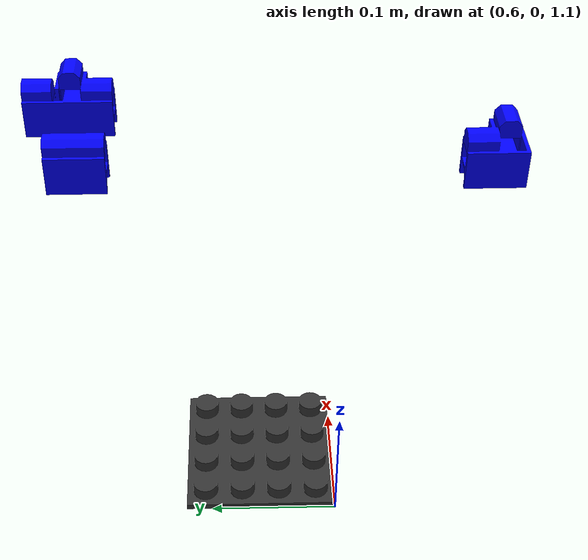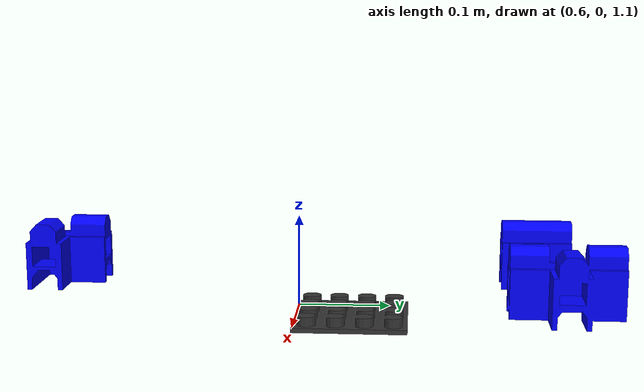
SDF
<sdf version="1.6">
  <world name="empty">
    <physics name="1ms" type="ignored">
      <max_step_size>0.01</max_step_size>
      <real_time_factor>1.0</real_time_factor>
    </physics>
    <plugin
      filename="gz-sim-physics-system"
      name="gz::sim::systems::Physics">
    </plugin>
    <plugin
      filename="gz-sim-user-commands-system"
      name="gz::sim::systems::UserCommands">
    </plugin>
    <plugin
      filename="gz-sim-scene-broadcaster-system"
      name="gz::sim::systems::SceneBroadcaster">
    </plugin>
    <plugin
      filename="gz-sim-sensors-system"
      name="gz::sim::systems::Sensors">
      <render_engine>ogre2</render_engine>
    </plugin>
    <plugin
      filename="gz-sim-contact-system"
      name="gz::sim::systems::Contact">
    </plugin>

    <light type="directional" name="sun">
      <cast_shadows>false</cast_shadows>
      <pose>0 0 10 0 0 0</pose>
      <diffuse>0.8 0.8 0.8 1</diffuse>
      <specular>0.2 0.2 0.2 1</specular>
      <attenuation>
        <range>1000</range>
        <constant>0.9</constant>
        <linear>0.01</linear>
        <quadratic>0.001</quadratic>
      </attenuation>
      <direction>-0.5 0.1 -0.9</direction>
    </light>

    <model name="ground_plane">
      <static>true</static>
      <link name="link">
        <collision name="collision">
          <geometry>
            <plane>
              <normal>0 0 1</normal>
              <size>100 100</size>
            </plane>
          </geometry>
        </collision>
        <visual name="visual">
          <geometry>
            <plane>
              <normal>0 0 1</normal>
              <size>100 100</size>
            </plane>
          </geometry>
          <material>
            <ambient>0.8 0.8 0.8 1</ambient>
            <diffuse>0.8 0.8 0.8 1</diffuse>
            <specular>0.8 0.8 0.8 1</specular>
          </material>
        </visual>
      </link>
    </model>

  <include>
      <pose>0.6 0.0 1.1 0 0 0</pose>
      <name>base_brick</name>
      <uri>model://Base_brick</uri>
  </include>

  <include>
      <pose>0.9 -0.2 1.2 0 0 0</pose>
      <name>L_brick_1</name>
      <uri>model://L_brick</uri>
  </include>

  <include>
      <pose>1.0 0.2 1.2 0 0 0</pose>
      <name>T_brick_1</name>
      <uri>model://T_brick</uri>
  </include>

  <include>
      <pose>0.9 0.2 1.2 0 0 0</pose>
      <name>I_brick_1</name>
      <uri>model://I_brick</uri>
  </include>
  </world>
</sdf>

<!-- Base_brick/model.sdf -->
<sdf version="1.5">
  <model name='Base_brick'>
    <static>true</static>
    <pose>0 0 0 0 0 0</pose>

    <link name='link'>
      <inertial>
        <mass>0.1</mass>
        <inertia>
          <ixx>0.166667</ixx>
          <ixy>0</ixy>
          <ixz>0</ixz>
          <iyy>0.166667</iyy>
          <iyz>0</iyz>
          <izz>0.166667</izz>
        </inertia>
        <pose>0 0 0 0 0 0</pose>
      </inertial>

      <collision name='collision'>
        <geometry>
          <mesh>
            <uri>model://Base_brick/base_brick.STL</uri>
            <scale>0.001 0.001 0.001</scale>
          </mesh>
        </geometry>
        <surface>
          <contact>
            <ode/>
          </contact>
          <bounce/>
          <friction>
            <torsional>
              <ode/>
            </torsional>
            <ode/>
          </friction>
        </surface>
        <max_contacts>10</max_contacts>
      </collision>

      <visual name='Base_brick_visual'>
        <geometry>
          <mesh>
            <uri>model://Base_brick/base_brick.STL</uri>
            <scale>0.001 0.001 0.001</scale>
          </mesh>
        </geometry>

        <material>
          <ambient>0.2 0.2 0.2 1.0</ambient>
          <diffuse>0.2 0.2 0.2 1.0</diffuse>
          <specular>0.5 0.5 0.5 1.0</specular>
        </material>

      </visual> <self_collide>0</self_collide>
      <enable_wind>0</enable_wind>
      <kinematic>0</kinematic>
    </link>
  </model>
</sdf>

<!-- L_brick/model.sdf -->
<sdf version="1.5">
  <model name='L_brick'>
    <pose>0 0 0 0 0 0</pose>
    <link name='link'>
        <inertial>
          <mass>0.15</mass>
          <pose>0.03 0.03 0.02 0 0 0</pose>
          <inertia>
            <ixx>3.0e-4</ixx>
            <iyy>3.0e-4</iyy>
            <izz>5.0e-4</izz>
            <ixy>0</ixy>
            <ixz>0</ixz>
            <iyz>0</iyz>
          </inertia>
        </inertial>

      <visual name='L_brick_visual'>
        <pose>0 0 0 0 0 0</pose>
        <geometry>
          <mesh>
            <uri>model://L_brick/L_brick.STL</uri>
            <scale>0.001 0.001 0.001</scale>
          </mesh>
        </geometry>
        <material><ambient>0 0 1 1</ambient><diffuse>0 0 1 1</diffuse></material>
      </visual>

      <collision name='wall_left'>
        <pose>0.002 0.03 0.02 0 0 0</pose>
        <geometry><box><size>0.004 0.06 0.04</size></box></geometry>
      </collision>

      <collision name='wall_bottom'>
        <pose>0.03 0.002 0.02 0 0 0</pose>
        <geometry><box><size>0.06 0.004 0.04</size></box></geometry>
      </collision>

      <collision name='wall_inner_vert'>
        <pose>0.028 0.045 0.02 0 0 0</pose>
        <geometry><box><size>0.004 0.03 0.04</size></box></geometry>
      </collision>
      <collision name='wall_inner_horiz'>
        <pose>0.045 0.028 0.02 0 0 0</pose>
        <geometry><box><size>0.03 0.004 0.04</size></box></geometry>
      </collision>

      <collision name='roof_y'>
        <pose>0.015 0.045 0.039 0 0 0</pose>
        <geometry><box><size>0.03 0.03 0.002</size></box></geometry>
      </collision>
      <collision name='roof_x'>
        <pose>0.045 0.015 0.039 0 0 0</pose>
        <geometry><box><size>0.03 0.03 0.002</size></box></geometry>
      </collision>
      <collision name='roof_corner'>
        <pose>0.015 0.015 0.039 0 0 0</pose>
        <geometry><box><size>0.03 0.03 0.002</size></box></geometry>
      </collision>

      <collision name='stud_y'>
        <pose>0.015 0.045 0.044 0 0 0</pose>
        <geometry><box><size>0.022 0.022 0.012</size></box></geometry>
      </collision>

      <collision name='stud_x'>
        <pose>0.045 0.015 0.044 0 0 0</pose>
        <geometry><box><size>0.022 0.022 0.012</size></box></geometry>
      </collision>

      <collision name="grasp_proxy">
          <pose>0.03 0.03 0.02 0 0 0</pose>
          <geometry>
            <box>
              <size>0.06 0.06 0.04</size>
            </box>
          </geometry>
          <surface>
            <friction>
              <ode>
                <mu>1.5</mu>
                <mu2>1.5</mu2>
              </ode>
            </friction>
            <contact>
              <ode>
                <kp>1e6</kp>
                <kd>1.0</kd>
              </ode>
            </contact>
          </surface>
        </collision>

    </link>
  </model>
</sdf>

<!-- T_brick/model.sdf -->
<sdf version="1.5">
  <model name='T_brick'>
    <pose>0 0 0 0 0 0</pose>
    <link name='link'>
      <inertial>
        <mass>0.15</mass>
        <pose>0.025 0.045 0.02 0 0 0</pose>
        <inertia>
          <ixx>3.0e-4</ixx>
          <iyy>6.0e-4</iyy>
          <izz>7.0e-4</izz>
          <ixy>0</ixy>
          <ixz>0</ixz>
          <iyz>0</iyz>
        </inertia>
      </inertial>
      <visual name='T_brick_visual'>
        <pose>0 0 0 0 0 0</pose>
        <geometry>
          <mesh>
            <uri>model://T_brick/T_brick.STL</uri>
            <scale>0.001 0.001 0.001</scale>
          </mesh>
        </geometry>
        <material><ambient>0 0 1 1</ambient><diffuse>0 0 1 1</diffuse></material>
      </visual>

      <collision name='wall_back'>
        <pose>0.002 0.045 0.02 0 0 0</pose>
        <geometry><box><size>0.004 0.09 0.04</size></box></geometry>
      </collision>

      <collision name='wall_front_bot'>
        <pose>0.028 0.015 0.02 0 0 0</pose>
        <geometry><box><size>0.004 0.03 0.04</size></box></geometry>
      </collision>
      <collision name='wall_front_top'>
        <pose>0.028 0.075 0.02 0 0 0</pose>
        <geometry><box><size>0.004 0.03 0.04</size></box></geometry>
      </collision>

      <collision name='wall_leg_bot'>
        <pose>0.045 0.032 0.02 0 0 0</pose>
        <geometry><box><size>0.03 0.004 0.04</size></box></geometry>
      </collision>
      <collision name='wall_leg_top'>
        <pose>0.045 0.058 0.02 0 0 0</pose>
        <geometry><box><size>0.03 0.004 0.04</size></box></geometry>
      </collision>
      <collision name='roof_bar'>
         <pose>0.015 0.045 0.039 0 0 0</pose>
         <geometry><box><size>0.03 0.09 0.002</size></box></geometry>
      </collision>
      <collision name='roof_leg'>
         <pose>0.045 0.045 0.039 0 0 0</pose>
         <geometry><box><size>0.03 0.03 0.002</size></box></geometry>
      </collision>

      <collision name='stud_bar_bot'>
        <pose>0.015 0.015 0.044 0 0 0</pose>
        <geometry><box><size>0.022 0.022 0.012</size></box></geometry>
      </collision>

      <collision name='stud_bar_top'>
        <pose>0.015 0.075 0.044 0 0 0</pose>
        <geometry><box><size>0.022 0.022 0.012</size></box></geometry>
      </collision>

      <collision name='stud_leg'>
        <pose>0.045 0.045 0.044 0 0 0</pose>
        <geometry><box><size>0.022 0.022 0.012</size></box></geometry>
      </collision>

      <collision name="grasp_proxy">
        <pose>0.025 0.045 0.02 0 0 0</pose>
        <geometry>
          <box>
            <size>0.06 0.09 0.04</size>
          </box>
          </geometry>
          <surface>
            <friction>
              <ode>
                <mu>1.5</mu>
                <mu2>1.5</mu2>
              </ode>
            </friction>
            <contact>
              <ode>
                <kp>1e6</kp>
                <kd>1.0</kd>
              </ode>
            </contact>
          </surface>
      </collision>

    </link>
  </model>
</sdf>

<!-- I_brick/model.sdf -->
<sdf version="1.5">
  <model name='I_brick'>
    <pose>0 0 0 0 0 0</pose>
    <link name='link'>
      <inertial>
        <mass>0.15</mass>
        <pose>0.015 0.029 0.02 0 0 0</pose>
        <inertia>
          <ixx>2.0e-4</ixx>
          <iyy>6.0e-4</iyy>
          <izz>7.0e-4</izz>
          <ixy>0</ixy>
          <ixz>0</ixz>
          <iyz>0</iyz>
        </inertia>
      </inertial>

      <visual name='I_brick_visual'>
        <pose>0 0 0 0 0 0</pose>
        <geometry>
          <mesh>
            <uri>model://I_brick/I_brick.STL</uri>
            <scale>0.001 0.001 0.001</scale>
          </mesh>
        </geometry>
        <material><ambient>0 0 1 1</ambient><diffuse>0 0 1 1</diffuse></material>
      </visual>

      <collision name='wall_left'>
        <pose>0.002 0.029 0.02 0 0 0</pose>
        <geometry><box><size>0.004 0.058 0.04</size></box></geometry>
      </collision>
      <collision name='wall_right'>
        <pose>0.028 0.029 0.02 0 0 0</pose>
        <geometry><box><size>0.004 0.058 0.04</size></box></geometry>
      </collision>
      <collision name='roof'>
        <pose>0.015 0.029 0.039 0 0 0</pose>
        <geometry><box><size>0.03 0.058 0.002</size></box></geometry>
      </collision>

      <collision name='stud'>
        <pose>0.015 0.029 0.044 0 0 0</pose>
        <geometry><box><size>0.022 0.058 0.012</size></box></geometry>
      </collision>
      <collision name="grasp_proxy">
        <pose>0.015 0.029 0.02 0 0 0</pose>
        <geometry>
          <box>
            <size>0.03 0.058 0.04</size>
          </box>
        </geometry>
        <surface>
          <friction>
            <ode>
              <mu>1.5</mu>
              <mu2>1.5</mu2>
            </ode>
          </friction>
          <contact>
            <ode>
              <kp>1e6</kp>
              <kd>1.0</kd>
            </ode>
          </contact>
        </surface>
      </collision>

    </link>
  </model>
</sdf>
